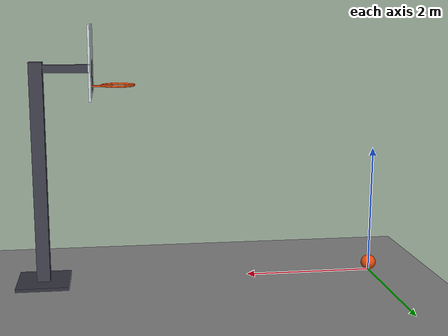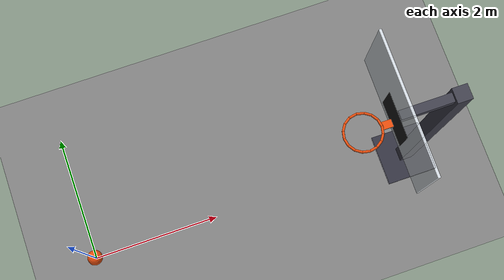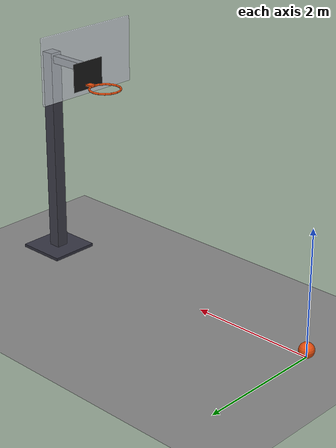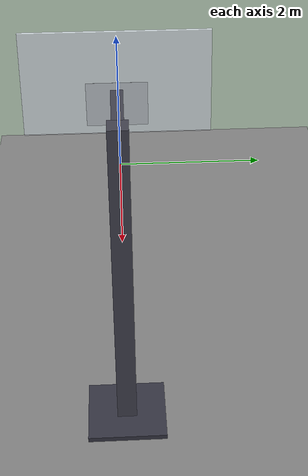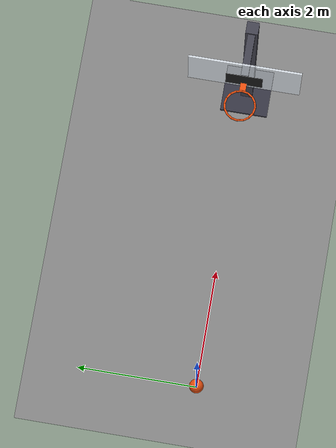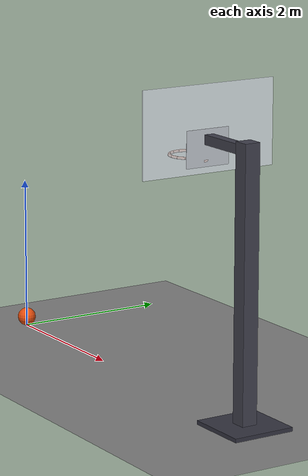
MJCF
<mujoco model="basketball_shot_from_the_floor">
  <compiler angle="radian"/>
  <option timestep="0.002"/>
  <worldbody>
    <geom name="floor" type="plane" size="10 10 0.1" friction="0.8 0.005 0.002"/>
    <body name="ball" pos="0 0 0.12">
      <freejoint/>
      <inertial pos="0 0 0" mass="0.624" diaginertia="0.0059904 0.0059904 0.0059904"/>
      <geom name="ball" type="sphere" pos="0 0 0" size="0.12" condim="6" friction="0.8 0.005 0.002" solref="0.01 0.2" rgba="0.9 0.3 0.05 1"/>
    </body>
    <body name="hoop">
      <geom name="rim_00" type="capsule" size="0.016" fromto="4.2446 0 3.05 4.22598 0.0936044 3.05" rgba="0.9 0.3 0.05 1"/>
      <geom name="rim_01" type="capsule" size="0.016" fromto="4.22598 0.0936044 3.05 4.17296 0.172958 3.05" rgba="0.9 0.3 0.05 1"/>
      <geom name="rim_02" type="capsule" size="0.016" fromto="4.17296 0.172958 3.05 4.0936 0.225981 3.05" rgba="0.9 0.3 0.05 1"/>
      <geom name="rim_03" type="capsule" size="0.016" fromto="4.0936 0.225981 3.05 4 0.2446 3.05" rgba="0.9 0.3 0.05 1"/>
      <geom name="rim_04" type="capsule" size="0.016" fromto="4 0.2446 3.05 3.9064 0.225981 3.05" rgba="0.9 0.3 0.05 1"/>
      <geom name="rim_05" type="capsule" size="0.016" fromto="3.9064 0.225981 3.05 3.82704 0.172958 3.05" rgba="0.9 0.3 0.05 1"/>
      <geom name="rim_06" type="capsule" size="0.016" fromto="3.82704 0.172958 3.05 3.77402 0.0936044 3.05" rgba="0.9 0.3 0.05 1"/>
      <geom name="rim_07" type="capsule" size="0.016" fromto="3.77402 0.0936044 3.05 3.7554 2.99549e-17 3.05" rgba="0.9 0.3 0.05 1"/>
      <geom name="rim_08" type="capsule" size="0.016" fromto="3.7554 2.99549e-17 3.05 3.77402 -0.0936044 3.05" rgba="0.9 0.3 0.05 1"/>
      <geom name="rim_09" type="capsule" size="0.016" fromto="3.77402 -0.0936044 3.05 3.82704 -0.172958 3.05" rgba="0.9 0.3 0.05 1"/>
      <geom name="rim_10" type="capsule" size="0.016" fromto="3.82704 -0.172958 3.05 3.9064 -0.225981 3.05" rgba="0.9 0.3 0.05 1"/>
      <geom name="rim_11" type="capsule" size="0.016" fromto="3.9064 -0.225981 3.05 4 -0.2446 3.05" rgba="0.9 0.3 0.05 1"/>
      <geom name="rim_12" type="capsule" size="0.016" fromto="4 -0.2446 3.05 4.0936 -0.225981 3.05" rgba="0.9 0.3 0.05 1"/>
      <geom name="rim_13" type="capsule" size="0.016" fromto="4.0936 -0.225981 3.05 4.17296 -0.172958 3.05" rgba="0.9 0.3 0.05 1"/>
      <geom name="rim_14" type="capsule" size="0.016" fromto="4.17296 -0.172958 3.05 4.22598 -0.0936044 3.05" rgba="0.9 0.3 0.05 1"/>
      <geom name="rim_15" type="capsule" size="0.016" fromto="4.22598 -0.0936044 3.05 4.2446 -5.99097e-17 3.05" rgba="0.9 0.3 0.05 1"/>
      <geom name="hoop_bracket" type="box" pos="4.3105 0 3.04" size="0.0705 0.05 0.012" rgba="0.9 0.3 0.05 1"/>
      <geom name="hoop_backboard" type="box" pos="4.396 0 3.425" size="0.015 0.9 0.525" rgba="0.92 0.95 0.98 0.85"/>
      <geom name="hoop_square" type="box" pos="4.3805 0 3.195" size="0.0005 0.295 0.225" contype="0" conaffinity="0" rgba="0.1 0.1 0.1 1"/>
      <geom name="hoop_pole_base" type="box" pos="5.2 0 0.025" size="0.4 0.4 0.025" rgba="0.2 0.2 0.25 1"/>
      <geom name="hoop_pole" type="box" pos="5.2 0 1.7" size="0.1 0.1 1.7" rgba="0.25 0.25 0.3 1"/>
      <geom name="hoop_arm" type="box" pos="4.7555 0 3.3" size="0.3445 0.06 0.06" rgba="0.25 0.25 0.3 1"/>
    </body>
  </worldbody>
  <keyframe>
    <key name="start" qpos="0 0 0.12 1 0 0 0" qvel="3.07692 0 8.63035 0 0 0"/>
  </keyframe>
</mujoco>
